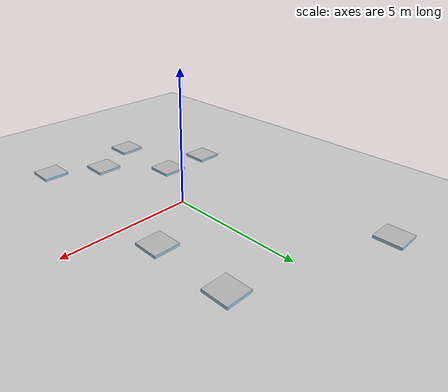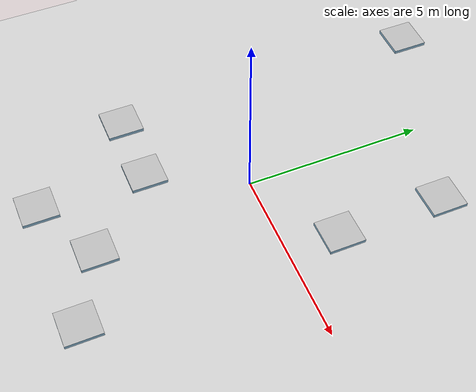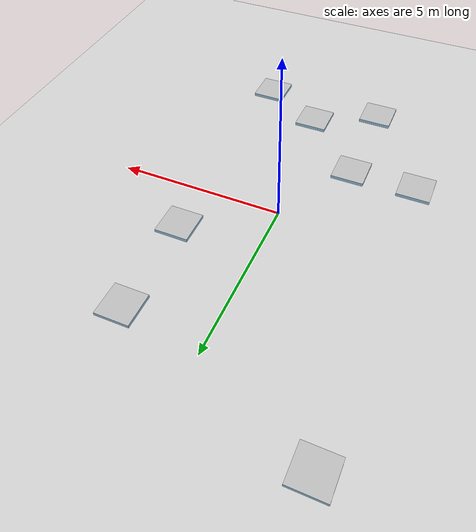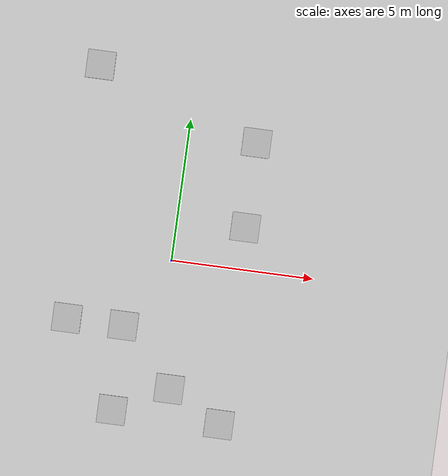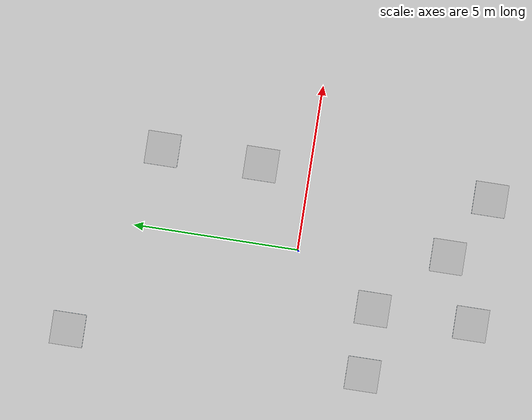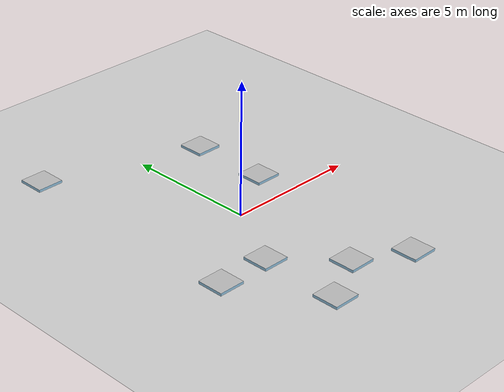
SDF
<sdf version='1.9'>
  <world name='bouncing_world'>
    <physics type="ode">
      <max_step_size>0.001</max_step_size>
      <real_time_factor>1</real_time_factor>
      <real_time_update_rate>1000</real_time_update_rate>
    </physics>
    <gravity>0 0 -9.8</gravity>
    <magnetic_field>6e-06 2.3e-05 -4.2e-05</magnetic_field>
    <atmosphere type='adiabatic'/>
    <scene>
      <grid>false</grid>
      <ambient>0.4 0.4 0.4 1</ambient>
      <background>0.7 0.7 0.7 1</background>
      <shadows>true</shadows>
    </scene>
    <model name='ground_plane'>
      <static>true</static>
      <link name='link'>
        <collision name='collision'>
          <geometry>
            <plane>
              <normal>0 0 1</normal>
              <size>1 1</size>
            </plane>
          </geometry>
          <surface>
            <friction>
              <ode/>
            </friction>
            <bounce/>
            <contact/>
          </surface>
        </collision>
        <visual name='visual'>
          <geometry>
            <plane>
              <normal>0 0 1</normal>
              <size>100 100</size>
            </plane>
          </geometry>
          <material>
            <ambient>0.8 0.8 0.8 1</ambient>
            <diffuse>0.8 0.8 0.8 1</diffuse>
            <specular>0.8 0.8 0.8 1</specular>
          </material>
        </visual>
        <pose>0 0 0 0 -0 0</pose>
        <inertial>
          <pose>0 0 0 0 -0 0</pose>
          <mass>1</mass>
          <inertia>
            <ixx>1</ixx>
            <ixy>0</ixy>
            <ixz>0</ixz>
            <iyy>1</iyy>
            <iyz>0</iyz>
            <izz>1</izz>
          </inertia>
        </inertial>
        <enable_wind>false</enable_wind>
      </link>
      <pose>0 0 0 0 -0 0</pose>
      <self_collide>false</self_collide>
    </model>

    <model name='square_panel'>
      <link name='link'>
        <visual name='visual'>
          <geometry>
            <mesh>
              <uri>assets/square_panel.dae</uri>
            </mesh>
          </geometry>
        </visual>
        <collision name='collision'>
          <geometry>
            <mesh>
              <uri>assets/square_panel.dae</uri>
            </mesh>
          </geometry>
        </collision>
        <pose>0 0 0 0 -0 0</pose>
        <inertial>
          <pose>0 0 0 0 -0 0</pose>
          <mass>1</mass>
          <inertia>
            <ixx>1</ixx>
            <ixy>0</ixy>
            <ixz>0</ixz>
            <iyy>1</iyy>
            <iyz>0</iyz>
            <izz>1</izz>
          </inertia>
        </inertial>
        <enable_wind>false</enable_wind>
      </link>
      <pose>-1.90021 -1.99475 0 0 -0 0</pose>
      <static>false</static>
      <self_collide>false</self_collide>
    </model>

    <model name='circle_panel'>
      <link name='link'>
        <visual name='visual'>
          <geometry>
            <mesh>
              <uri>assets/circle_panel.dae</uri>
            </mesh>
          </geometry>
        </visual>
        <collision name='collision'>
          <geometry>
            <mesh>
              <uri>assets/circle_panel.dae</uri>
            </mesh>
          </geometry>
        </collision>
        <pose>0 0 0 0 -0 0</pose>
        <inertial>
          <pose>0 0 0 0 -0 0</pose>
          <mass>1</mass>
          <inertia>
            <ixx>1</ixx>
            <ixy>0</ixy>
            <ixz>0</ixz>
            <iyy>1</iyy>
            <iyz>0</iyz>
            <izz>1</izz>
          </inertia>
        </inertial>
        <enable_wind>false</enable_wind>
      </link>
      <pose>-3.90021 -1.99475 0 0 -0 0</pose>
      <static>false</static>
      <self_collide>false</self_collide>
    </model>

    <model name='cross_panel'>
      <link name='link'>
        <visual name='visual'>
          <geometry>
            <mesh>
              <uri>assets/cross_panel.dae</uri>
            </mesh>
          </geometry>
        </visual>
        <collision name='collision'>
          <geometry>
            <mesh>
              <uri>assets/cross_panel.dae</uri>
            </mesh>
          </geometry>
        </collision>
        <pose>0 0 0 0 -0 0</pose>
        <inertial>
          <pose>0 0 0 0 -0 0</pose>
          <mass>1</mass>
          <inertia>
            <ixx>1</ixx>
            <ixy>0</ixy>
            <ixz>0</ixz>
            <iyy>1</iyy>
            <iyz>0</iyz>
            <izz>1</izz>
          </inertia>
        </inertial>
        <enable_wind>false</enable_wind>
      </link>
      <pose>0 -3.99475 0 0 -0 0</pose>
      <static>false</static>
      <self_collide>false</self_collide>
    </model>

    <model name='hexagono_panel'>
      <link name='link'>
        <visual name='visual'>
          <geometry>
            <mesh>
              <uri>assets/hexagono_panel.dae</uri>
            </mesh>
          </geometry>
        </visual>
        <collision name='collision'>
          <geometry>
            <mesh>
              <uri>assets/hexagono_panel.dae</uri>
            </mesh>
          </geometry>
        </collision>
        <pose>0 0 0 0 -0 0</pose>
        <inertial>
          <pose>0 0 0 0 -0 0</pose>
          <mass>1</mass>
          <inertia>
            <ixx>1</ixx>
            <ixy>0</ixy>
            <ixz>0</ixz>
            <iyy>1</iyy>
            <iyz>0</iyz>
            <izz>1</izz>
          </inertia>
        </inertial>
        <enable_wind>false</enable_wind>
      </link>
      <pose>-1.90021 -4.99475 0 0 -0 0</pose>
      <static>false</static>
      <self_collide>false</self_collide>
    </model>

    <model name='home_panel'>
      <link name='link'>
        <visual name='visual'>
          <geometry>
            <mesh>
              <uri>assets/home_panel.dae</uri>
            </mesh>
          </geometry>
        </visual>
        <collision name='collision'>
          <geometry>
            <mesh>
              <uri>assets/home_panel.dae</uri>
            </mesh>
          </geometry>
        </collision>
        <pose>0 0 0 0 -0 0</pose>
        <inertial>
          <pose>0 0 0 0 -0 0</pose>
          <mass>1</mass>
          <inertia>
            <ixx>1</ixx>
            <ixy>0</ixy>
            <ixz>0</ixz>
            <iyy>1</iyy>
            <iyz>0</iyz>
            <izz>1</izz>
          </inertia>
        </inertial>
        <enable_wind>false</enable_wind>
      </link>
      <pose>1.90021 -4.99475 0 0 -0 0</pose>
      <static>false</static>
      <self_collide>false</self_collide>
    </model>

    <model name='pentagono_panel'>
      <link name='link'>
        <visual name='visual'>
          <geometry>
            <mesh>
              <uri>assets/pentagono_panel.dae</uri>
            </mesh>
          </geometry>
        </visual>
        <collision name='collision'>
          <geometry>
            <mesh>
              <uri>assets/pentagono_panel.dae</uri>
            </mesh>
          </geometry>
        </collision>
        <pose>0 0 0 0 -0 0</pose>
        <inertial>
          <pose>0 0 0 0 -0 0</pose>
          <mass>1</mass>
          <inertia>
            <ixx>1</ixx>
            <ixy>0</ixy>
            <ixz>0</ixz>
            <iyy>1</iyy>
            <iyz>0</iyz>
            <izz>1</izz>
          </inertia>
        </inertial>
        <enable_wind>false</enable_wind>
      </link>
      <pose>1.90021 1.99475 0 0 -0 0</pose>
      <static>false</static>
      <self_collide>false</self_collide>
    </model>

    <model name='star_panel'>
      <link name='link'>
        <visual name='visual'>
          <geometry>
            <mesh>
              <uri>assets/star_panel.dae</uri>
            </mesh>
          </geometry>
        </visual>
        <collision name='collision'>
          <geometry>
            <mesh>
              <uri>assets/star_panel.dae</uri>
            </mesh>
          </geometry>
        </collision>
        <pose>0 0 0 0 -0 0</pose>
        <inertial>
          <pose>0 0 0 0 -0 0</pose>
          <mass>1</mass>
          <inertia>
            <ixx>1</ixx>
            <ixy>0</ixy>
            <ixz>0</ixz>
            <iyy>1</iyy>
            <iyz>0</iyz>
            <izz>1</izz>
          </inertia>
        </inertial>
        <enable_wind>false</enable_wind>
      </link>
      <pose>1.90021 4.99475 0 0 -0 0</pose>
      <static>false</static>
      <self_collide>false</self_collide>
    </model>

    <model name='triangle_panel'>
      <link name='link'>
        <visual name='visual'>
          <geometry>
            <mesh>
              <uri>assets/triangle_panel.dae</uri>
            </mesh>
          </geometry>
        </visual>
        <collision name='collision'>
          <geometry>
            <mesh>
              <uri>assets/triangle_panel.dae</uri>
            </mesh>
          </geometry>
        </collision>
        <pose>0 0 0 0 -0 0</pose>
        <inertial>
          <pose>0 0 0 0 -0 0</pose>
          <mass>1</mass>
          <inertia>
            <ixx>1</ixx>
            <ixy>0</ixy>
            <ixz>0</ixz>
            <iyy>1</iyy>
            <iyz>0</iyz>
            <izz>1</izz>
          </inertia>
        </inertial>
        <enable_wind>false</enable_wind>
      </link>
      <pose>-3.90021 6.99475 0 0 -0 0</pose>
      <static>false</static>
      <self_collide>false</self_collide>
    </model>

    <light name="sunUTC" type="directional">
      <pose>0 0 500 0 -0 0</pose>
      <cast_shadows>true</cast_shadows>
      <intensity>1</intensity>
      <direction>0.001 0.625 -0.78</direction>
      <diffuse>0.904 0.904 0.904 1</diffuse>
      <specular>0.271 0.271 0.271 1</specular>
      <attenuation>
        <range>2000</range>
        <linear>0</linear>
        <constant>1</constant>
        <quadratic>0</quadratic>
      </attenuation>
      <spot>
        <inner_angle>0</inner_angle>
        <outer_angle>0</outer_angle>
        <falloff>0</falloff>
      </spot>
    </light>
    <spherical_coordinates>
      <surface_model>EARTH_WGS84</surface_model>
      <world_frame_orientation>ENU</world_frame_orientation>
      <latitude_deg>47.397971057728974</latitude_deg>
      <longitude_deg> 8.546163739800146</longitude_deg>
      <elevation>0</elevation>
    </spherical_coordinates>
  </world>
</sdf>
